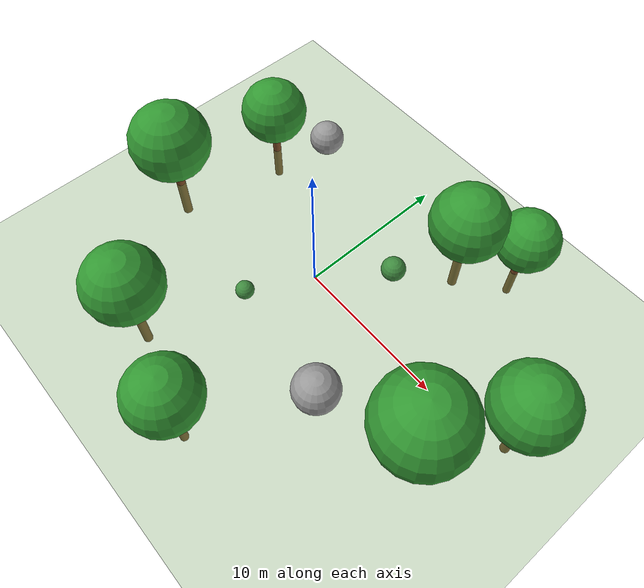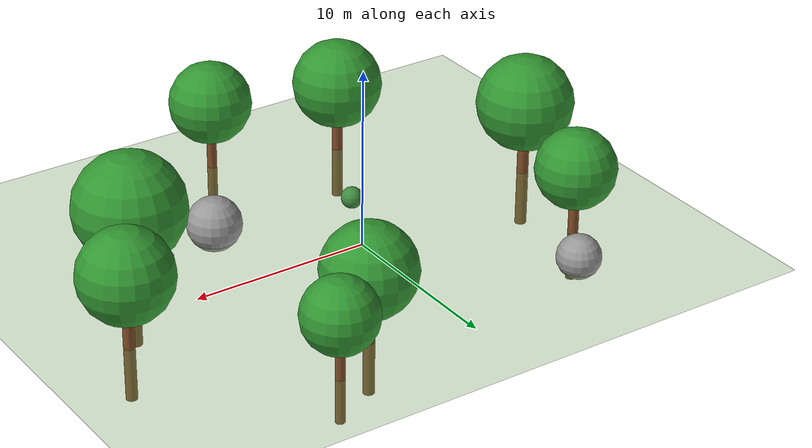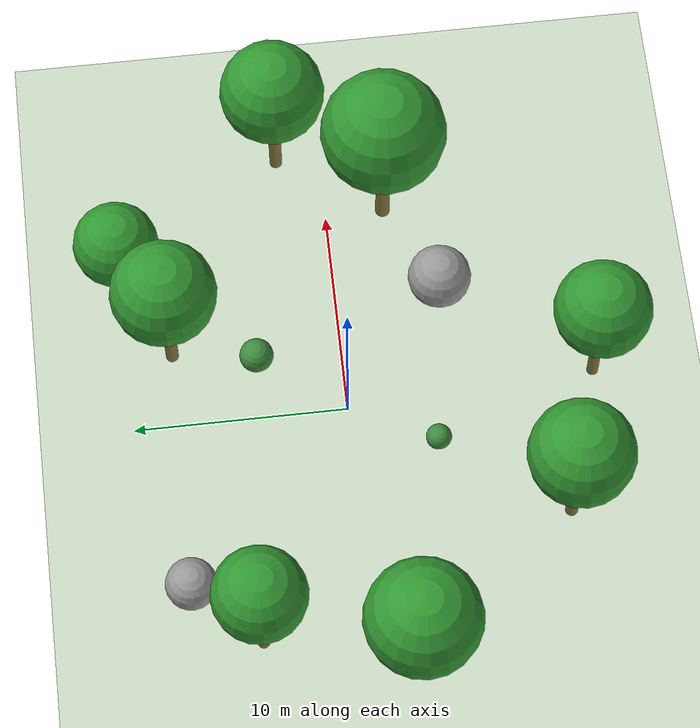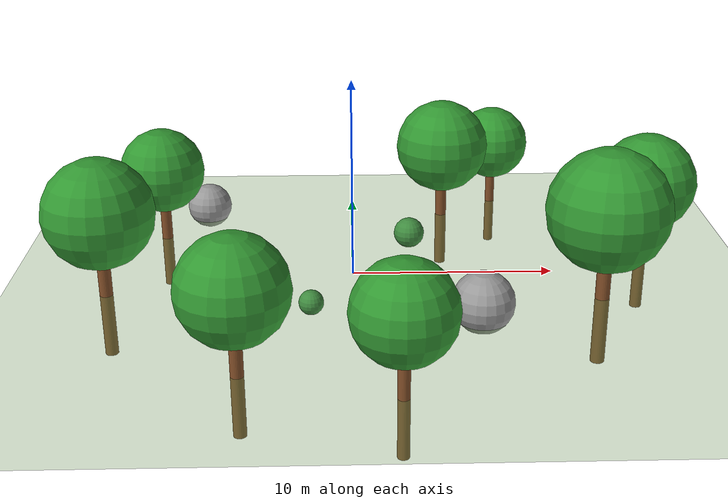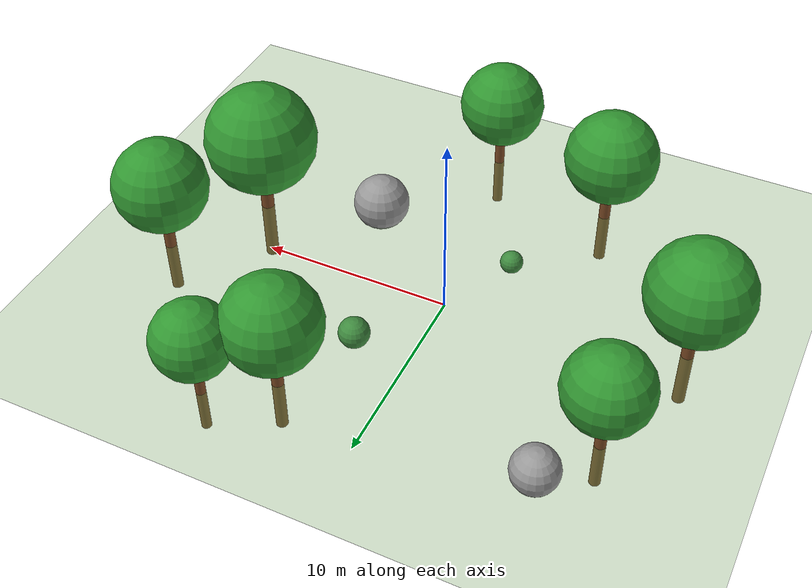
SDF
<?xml version="1.0" encoding="UTF-8"?>
<sdf version="1.9">
  <world name="test_drone_world">

    <!-- Physics -->
    <physics type="ode">
      <max_step_size>0.004</max_step_size>
      <real_time_factor>1.0</real_time_factor>
      <real_time_update_rate>250</real_time_update_rate>
    </physics>

    <!-- Environmental Physics (Required for sensors) -->
    <gravity>0 0 -9.8</gravity>
    <magnetic_field>6e-06 2.3e-05 -4.2e-05</magnetic_field>
    <atmosphere type="adiabatic"/>

    <!-- Scene Configuration -->
    <scene>
      <grid>false</grid>
      <ambient>0.4 0.4 0.4 1</ambient>
      <background>0.7 0.7 0.7 1</background>
      <shadows>true</shadows>
    </scene>

    <!-- Plugins -->
    <plugin filename="gz-sim-physics-system" name="gz::sim::systems::Physics"/>
    <plugin filename="gz-sim-user-commands-system" name="gz::sim::systems::UserCommands"/>
    <plugin filename="gz-sim-scene-broadcaster-system" name="gz::sim::systems::SceneBroadcaster"/>
    <plugin filename="gz-sim-imu-system" name="gz::sim::systems::Imu"/>
    <plugin filename="gz-sim-sensors-system" name="gz::sim::systems::Sensors">
      <render_engine>ogre2</render_engine>
    </plugin>

    <!-- Lighting -->
    <light type="directional" name="sun">
      <cast_shadows>true</cast_shadows>
      <pose>0 0 10 0 0 0</pose>
      <diffuse>0.8 0.8 0.8 1</diffuse>
      <specular>0.2 0.2 0.2 1</specular>
      <attenuation>
        <range>1000</range>
        <constant>0.9</constant>
        <linear>0.01</linear>
        <quadratic>0.001</quadratic>
      </attenuation>
      <direction>-0.5 0.1 -0.9</direction>
    </light>

    <!-- Ground plane with grass texture -->
    <model name="ground_plane">
      <static>true</static>
      <link name="link">
        <collision name="collision">
          <geometry>
            <plane>
              <normal>0 0 1</normal>
              <size>200 200</size>
            </plane>
          </geometry>
        </collision>
        <visual name="visual">
          <geometry>
            <plane>
              <normal>0 0 1</normal>
              <size>200 200</size>
            </plane>
          </geometry>
          <material>
            <ambient>0.3 0.5 0.2 1</ambient>
            <diffuse>0.4 0.6 0.3 1</diffuse>
            <specular>0.1 0.1 0.1 1</specular>
          </material>
        </visual>
      </link>
    </model>

    <!-- Forest environment: Trees arranged in natural pattern -->

    <!-- Tree cluster 1: North -->
    <model name="tree_1">
      <pose>5 8 0 0 0 0</pose>
      <static>true</static>
      <link name="trunk">
        <collision name="trunk_collision">
          <geometry>
            <cylinder>
              <radius>0.3</radius>
              <length>6</length>
            </cylinder>
          </geometry>
        </collision>
        <visual name="trunk_visual">
          <geometry>
            <cylinder>
              <radius>0.3</radius>
              <length>6</length>
            </cylinder>
          </geometry>
          <material>
            <ambient>0.4 0.2 0.1 1</ambient>
            <diffuse>0.5 0.3 0.15 1</diffuse>
          </material>
        </visual>
      </link>
      <link name="canopy">
        <pose>0 0 4 0 0 0</pose>
        <collision name="canopy_collision">
          <geometry>
            <sphere>
              <radius>2.5</radius>
            </sphere>
          </geometry>
        </collision>
        <visual name="canopy_visual">
          <geometry>
            <sphere>
              <radius>2.5</radius>
            </sphere>
          </geometry>
          <material>
            <ambient>0.1 0.4 0.1 1</ambient>
            <diffuse>0.2 0.6 0.2 1</diffuse>
          </material>
        </visual>
      </link>
    </model>

    <model name="tree_2">
      <pose>8 10 0 0 0 0</pose>
      <static>true</static>
      <link name="trunk">
        <collision name="trunk_collision">
          <geometry>
            <cylinder>
              <radius>0.25</radius>
              <length>5</length>
            </cylinder>
          </geometry>
        </collision>
        <visual name="trunk_visual">
          <geometry>
            <cylinder>
              <radius>0.25</radius>
              <length>5</length>
            </cylinder>
          </geometry>
          <material>
            <ambient>0.4 0.2 0.1 1</ambient>
            <diffuse>0.5 0.3 0.15 1</diffuse>
          </material>
        </visual>
      </link>
      <link name="canopy">
        <pose>0 0 3.5 0 0 0</pose>
        <collision name="canopy_collision">
          <geometry>
            <sphere>
              <radius>2</radius>
            </sphere>
          </geometry>
        </collision>
        <visual name="canopy_visual">
          <geometry>
            <sphere>
              <radius>2</radius>
            </sphere>
          </geometry>
          <material>
            <ambient>0.1 0.4 0.1 1</ambient>
            <diffuse>0.2 0.6 0.2 1</diffuse>
          </material>
        </visual>
      </link>
    </model>

    <!-- Tree cluster 2: East -->
    <model name="tree_3">
      <pose>12 -3 0 0 0 0</pose>
      <static>true</static>
      <link name="trunk">
        <collision name="trunk_collision">
          <geometry>
            <cylinder>
              <radius>0.35</radius>
              <length>7</length>
            </cylinder>
          </geometry>
        </collision>
        <visual name="trunk_visual">
          <geometry>
            <cylinder>
              <radius>0.35</radius>
              <length>7</length>
            </cylinder>
          </geometry>
          <material>
            <ambient>0.4 0.2 0.1 1</ambient>
            <diffuse>0.5 0.3 0.15 1</diffuse>
          </material>
        </visual>
      </link>
      <link name="canopy">
        <pose>0 0 4.5 0 0 0</pose>
        <collision name="canopy_collision">
          <geometry>
            <sphere>
              <radius>3</radius>
            </sphere>
          </geometry>
        </collision>
        <visual name="canopy_visual">
          <geometry>
            <sphere>
              <radius>3</radius>
            </sphere>
          </geometry>
          <material>
            <ambient>0.1 0.4 0.1 1</ambient>
            <diffuse>0.2 0.6 0.2 1</diffuse>
          </material>
        </visual>
      </link>
    </model>

    <model name="tree_4">
      <pose>15 2 0 0 0 0</pose>
      <static>true</static>
      <link name="trunk">
        <collision name="trunk_collision">
          <geometry>
            <cylinder>
              <radius>0.3</radius>
              <length>6</length>
            </cylinder>
          </geometry>
        </collision>
        <visual name="trunk_visual">
          <geometry>
            <cylinder>
              <radius>0.3</radius>
              <length>6</length>
            </cylinder>
          </geometry>
          <material>
            <ambient>0.4 0.2 0.1 1</ambient>
            <diffuse>0.5 0.3 0.15 1</diffuse>
          </material>
        </visual>
      </link>
      <link name="canopy">
        <pose>0 0 4 0 0 0</pose>
        <collision name="canopy_collision">
          <geometry>
            <sphere>
              <radius>2.5</radius>
            </sphere>
          </geometry>
        </collision>
        <visual name="canopy_visual">
          <geometry>
            <sphere>
              <radius>2.5</radius>
            </sphere>
          </geometry>
          <material>
            <ambient>0.1 0.4 0.1 1</ambient>
            <diffuse>0.2 0.6 0.2 1</diffuse>
          </material>
        </visual>
      </link>
    </model>

    <!-- Tree cluster 3: West -->
    <model name="tree_5">
      <pose>-10 5 0 0 0 0</pose>
      <static>true</static>
      <link name="trunk">
        <collision name="trunk_collision">
          <geometry>
            <cylinder>
              <radius>0.28</radius>
              <length>5.5</length>
            </cylinder>
          </geometry>
        </collision>
        <visual name="trunk_visual">
          <geometry>
            <cylinder>
              <radius>0.28</radius>
              <length>5.5</length>
            </cylinder>
          </geometry>
          <material>
            <ambient>0.4 0.2 0.1 1</ambient>
            <diffuse>0.5 0.3 0.15 1</diffuse>
          </material>
        </visual>
      </link>
      <link name="canopy">
        <pose>0 0 3.8 0 0 0</pose>
        <collision name="canopy_collision">
          <geometry>
            <sphere>
              <radius>2.2</radius>
            </sphere>
          </geometry>
        </collision>
        <visual name="canopy_visual">
          <geometry>
            <sphere>
              <radius>2.2</radius>
            </sphere>
          </geometry>
          <material>
            <ambient>0.1 0.4 0.1 1</ambient>
            <diffuse>0.2 0.6 0.2 1</diffuse>
          </material>
        </visual>
      </link>
    </model>

    <model name="tree_6">
      <pose>-12 -2 0 0 0 0</pose>
      <static>true</static>
      <link name="trunk">
        <collision name="trunk_collision">
          <geometry>
            <cylinder>
              <radius>0.32</radius>
              <length>6.5</length>
            </cylinder>
          </geometry>
        </collision>
        <visual name="trunk_visual">
          <geometry>
            <cylinder>
              <radius>0.32</radius>
              <length>6.5</length>
            </cylinder>
          </geometry>
          <material>
            <ambient>0.4 0.2 0.1 1</ambient>
            <diffuse>0.5 0.3 0.15 1</diffuse>
          </material>
        </visual>
      </link>
      <link name="canopy">
        <pose>0 0 4.2 0 0 0</pose>
        <collision name="canopy_collision">
          <geometry>
            <sphere>
              <radius>2.7</radius>
            </sphere>
          </geometry>
        </collision>
        <visual name="canopy_visual">
          <geometry>
            <sphere>
              <radius>2.7</radius>
            </sphere>
          </geometry>
          <material>
            <ambient>0.1 0.4 0.1 1</ambient>
            <diffuse>0.2 0.6 0.2 1</diffuse>
          </material>
        </visual>
      </link>
    </model>

    <!-- Tree cluster 4: South -->
    <model name="tree_7">
      <pose>-5 -10 0 0 0 0</pose>
      <static>true</static>
      <link name="trunk">
        <collision name="trunk_collision">
          <geometry>
            <cylinder>
              <radius>0.3</radius>
              <length>6</length>
            </cylinder>
          </geometry>
        </collision>
        <visual name="trunk_visual">
          <geometry>
            <cylinder>
              <radius>0.3</radius>
              <length>6</length>
            </cylinder>
          </geometry>
          <material>
            <ambient>0.4 0.2 0.1 1</ambient>
            <diffuse>0.5 0.3 0.15 1</diffuse>
          </material>
        </visual>
      </link>
      <link name="canopy">
        <pose>0 0 4 0 0 0</pose>
        <collision name="canopy_collision">
          <geometry>
            <sphere>
              <radius>2.5</radius>
            </sphere>
          </geometry>
        </collision>
        <visual name="canopy_visual">
          <geometry>
            <sphere>
              <radius>2.5</radius>
            </sphere>
          </geometry>
          <material>
            <ambient>0.1 0.4 0.1 1</ambient>
            <diffuse>0.2 0.6 0.2 1</diffuse>
          </material>
        </visual>
      </link>
    </model>

    <model name="tree_8">
      <pose>2 -12 0 0 0 0</pose>
      <static>true</static>
      <link name="trunk">
        <collision name="trunk_collision">
          <geometry>
            <cylinder>
              <radius>0.27</radius>
              <length>5.8</length>
            </cylinder>
          </geometry>
        </collision>
        <visual name="trunk_visual">
          <geometry>
            <cylinder>
              <radius>0.27</radius>
              <length>5.8</length>
            </cylinder>
          </geometry>
          <material>
            <ambient>0.4 0.2 0.1 1</ambient>
            <diffuse>0.5 0.3 0.15 1</diffuse>
          </material>
        </visual>
      </link>
      <link name="canopy">
        <pose>0 0 3.9 0 0 0</pose>
        <collision name="canopy_collision">
          <geometry>
            <sphere>
              <radius>2.3</radius>
            </sphere>
          </geometry>
        </collision>
        <visual name="canopy_visual">
          <geometry>
            <sphere>
              <radius>2.3</radius>
            </sphere>
          </geometry>
          <material>
            <ambient>0.1 0.4 0.1 1</ambient>
            <diffuse>0.2 0.6 0.2 1</diffuse>
          </material>
        </visual>
      </link>
    </model>

    <!-- Scattered boulders for terrain variety -->
    <model name="boulder_1">
      <pose>6 -5 0.8 0 0 0.3</pose>
      <static>true</static>
      <link name="link">
        <collision name="collision">
          <geometry>
            <sphere>
              <radius>1.5</radius>
            </sphere>
          </geometry>
        </collision>
        <visual name="visual">
          <geometry>
            <sphere>
              <radius>1.5</radius>
            </sphere>
          </geometry>
          <material>
            <ambient>0.5 0.5 0.5 1</ambient>
            <diffuse>0.6 0.6 0.6 1</diffuse>
          </material>
        </visual>
      </link>
    </model>

    <model name="boulder_2">
      <pose>-8 8 0.6 0 0 0.7</pose>
      <static>true</static>
      <link name="link">
        <collision name="collision">
          <geometry>
            <sphere>
              <radius>1.2</radius>
            </sphere>
          </geometry>
        </collision>
        <visual name="visual">
          <geometry>
            <sphere>
              <radius>1.2</radius>
            </sphere>
          </geometry>
          <material>
            <ambient>0.5 0.5 0.5 1</ambient>
            <diffuse>0.6 0.6 0.6 1</diffuse>
          </material>
        </visual>
      </link>
    </model>

    <!-- Bushes (smaller vegetation) -->
    <model name="bush_1">
      <pose>3 4 0.5 0 0 0</pose>
      <static>true</static>
      <link name="link">
        <collision name="collision">
          <geometry>
            <sphere>
              <radius>0.8</radius>
            </sphere>
          </geometry>
        </collision>
        <visual name="visual">
          <geometry>
            <sphere>
              <radius>0.8</radius>
            </sphere>
          </geometry>
          <material>
            <ambient>0.15 0.45 0.15 1</ambient>
            <diffuse>0.25 0.55 0.25 1</diffuse>
          </material>
        </visual>
      </link>
    </model>

    <model name="bush_2">
      <pose>-2 -4 0.4 0 0 0</pose>
      <static>true</static>
      <link name="link">
        <collision name="collision">
          <geometry>
            <sphere>
              <radius>0.6</radius>
            </sphere>
          </geometry>
        </collision>
        <visual name="visual">
          <geometry>
            <sphere>
              <radius>0.6</radius>
            </sphere>
          </geometry>
          <material>
            <ambient>0.15 0.45 0.15 1</ambient>
            <diffuse>0.25 0.55 0.25 1</diffuse>
          </material>
        </visual>
      </link>
    </model>

  </world>
</sdf>
